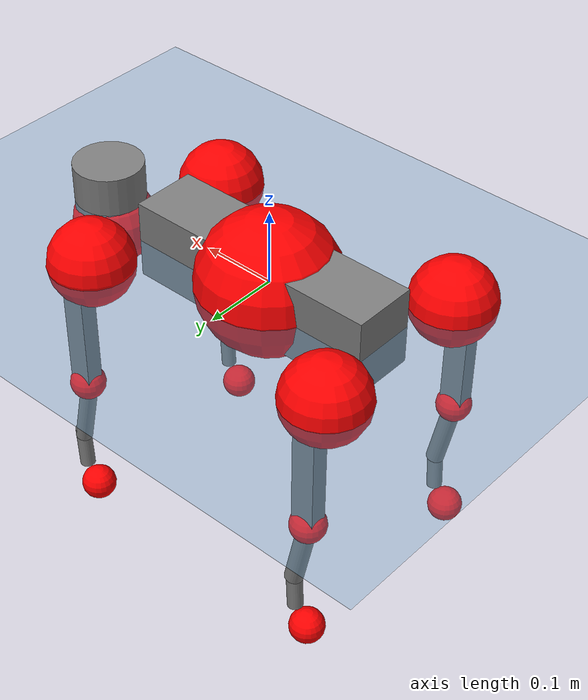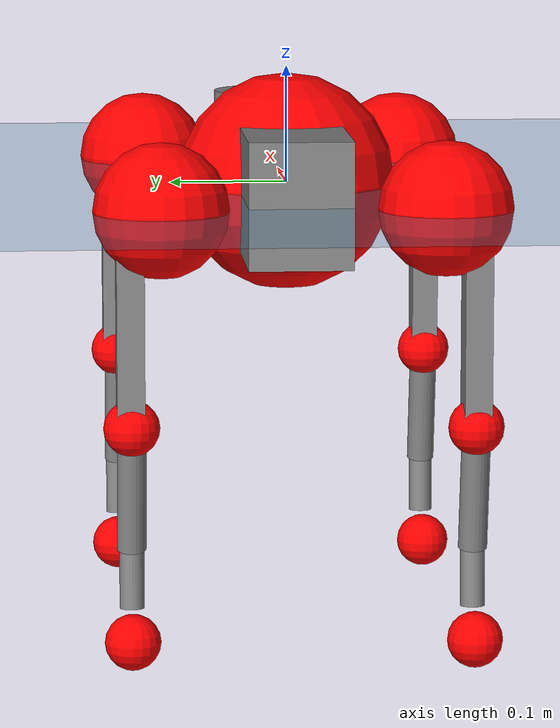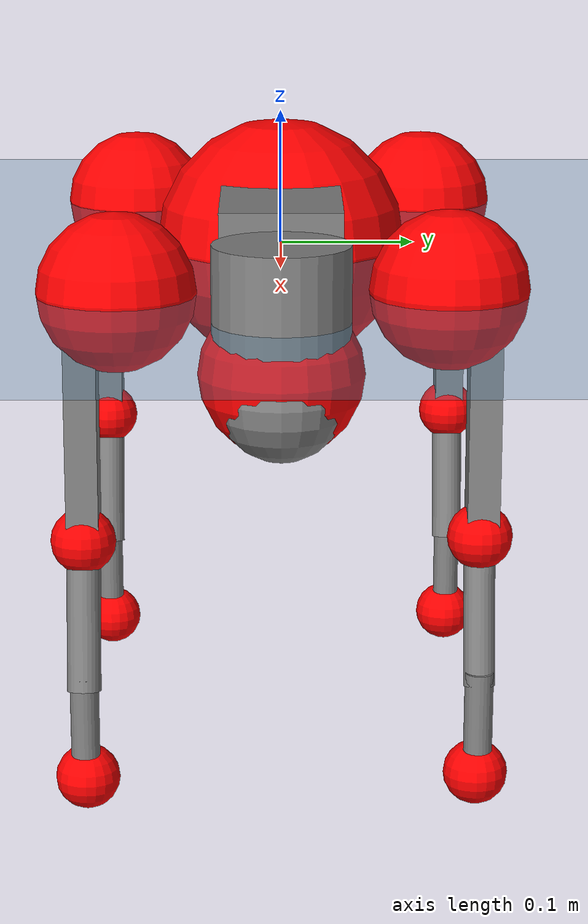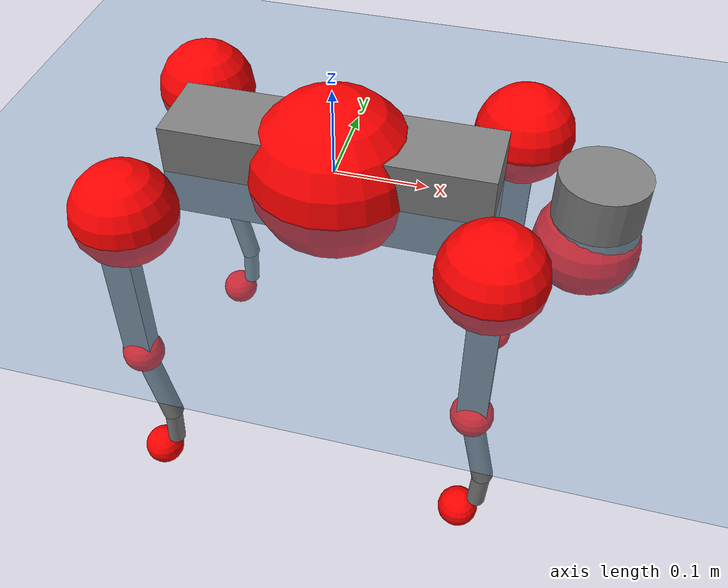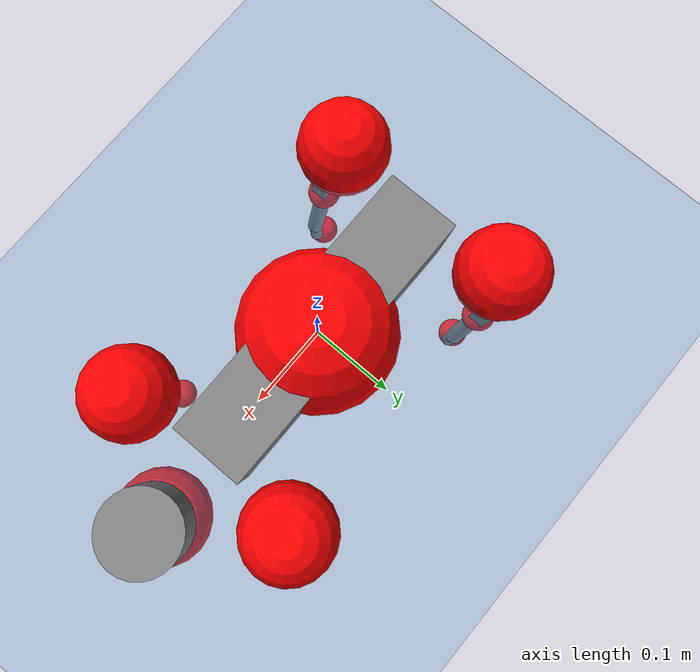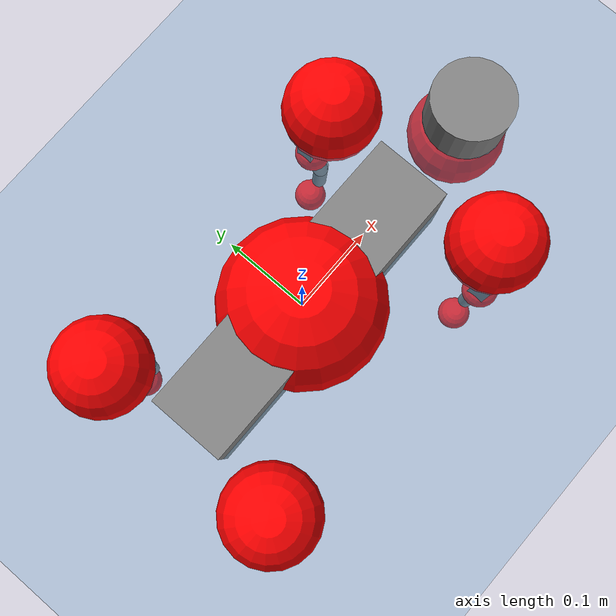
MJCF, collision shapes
<mujoco model="go2">
  <compiler angle="radian" assetdir="assets" balanceinertia="true" inertiafromgeom="false"/>

  <option timestep="0.005" density="1.2" viscosity="2e-05"/>

  <size nkey="1"/>

  <visual>
    <quality shadowsize="8192"/>
    <map shadowclip="0.5"/>
  </visual>

  <default>
    <default class="/">
      <geom contype="0" conaffinity="0" group="1" solref="-1000 -80"/>
      <site size="0.01 0.005 0.005" group="5"/>
      <general forcelimited="true" biastype="affine" gainprm="20" biasprm="0 -20 -0.5"/>
      <default class="go2">
        <joint armature="0.01" damping="0.01" frictionloss="0.2"/>
        <geom condim="1" margin="0.001"/>
        <default class="visual">
          <geom type="mesh" group="2"/>
        </default>
        <default class="collision">
          <geom group="3"/>
          <default class="foot">
            <geom size="0.022 0 0" condim="6" priority="1" friction="0.8 0.02 0.01" solimp="0.015 1 0.022"/>
          </default>
        </default>
        <default class="reward_collision_sphere">
          <geom group="5" rgba="1 0 0 1"/>
        </default>
      </default>
    </default>
  </default>

  <asset>
    <texture type="skybox" colorspace="auto" name="//unnamed_texture_0" builtin="gradient" rgb1="0.95 0.95 0.95" rgb2="0.95 0.95 0.95" width="100" height="600"/>
    <texture type="2d" colorspace="auto" name="texplane" builtin="checker" rgb1="0.345 0.575 0.748" rgb2="0.345 0.575 0.748" markrgb="1 1 1" width="512" height="512"/>
    <material name="MatPlane" class="/" texture="texplane" texuniform="true" texrepeat="2 2" specular="0.9"/>
    <material name="metal" class="/" rgba="0.9 0.95 0.95 1"/>
    <material name="black" class="/" rgba="0 0 0 1"/>
    <material name="white" class="/"/>
    <material name="gray" class="/" rgba="0.671705 0.692426 0.77427 1"/>
    <mesh name="base_0" class="/" file="base_0.obj"/>
    <mesh name="base_1" class="/" file="base_1.obj"/>
    <mesh name="base_2" class="/" file="base_2.obj"/>
    <mesh name="base_3" class="/" file="base_3.obj"/>
    <mesh name="base_4" class="/" file="base_4.obj"/>
    <mesh name="hip_0" class="/" file="hip_0.obj"/>
    <mesh name="hip_1" class="/" file="hip_1.obj"/>
    <mesh name="thigh_0" class="/" file="thigh_0.obj"/>
    <mesh name="thigh_1" class="/" file="thigh_1.obj"/>
    <mesh name="thigh_mirror_0" class="/" file="thigh_mirror_0.obj"/>
    <mesh name="thigh_mirror_1" class="/" file="thigh_mirror_1.obj"/>
    <mesh name="calf_0" class="/" file="calf_0.obj"/>
    <mesh name="calf_1" class="/" file="calf_1.obj"/>
    <mesh name="calf_mirror_0" class="/" file="calf_mirror_0.obj"/>
    <mesh name="calf_mirror_1" class="/" file="calf_mirror_1.obj"/>
    <mesh name="foot" class="/" file="foot.obj"/>
  </asset>

  <worldbody>
    <geom name="floor" class="/" size="100 100 0.125" type="plane" group="0" material="MatPlane"/>
    <light name="toplight_shadow" class="/" pos="0 0 5" dir="0.0990148 0.0990148 -0.990148" type="directional" ambient="0.04 0.04 0.04" diffuse="0.55 0.55 0.55" specular="0.12 0.12 0.12"/>
    <light name="toplight_fill" class="/" pos="0 0 5" dir="0.0990148 0.0990148 -0.990148" type="directional" castshadow="false" ambient="0.04 0.04 0.04" diffuse="0.3 0.3 0.3" specular="0.08 0.08 0.08"/>
    <body name="trunk" childclass="go2" pos="7.33938e-05 4.87483e-05 0.000836082" quat="1 6.99953e-07 -1.57257e-06 -1.5416e-06">
      <inertial pos="0.0198767 8.00528e-05 -0.00518749" quat="-0.000544022 0.713437 -0.00173495 0.700717" mass="5.70446" diaginertia="0.089104 0.0957107 0.0105048"/>
      <joint name="//unnamed_joint_0" type="free" armature="0" damping="0" frictionloss="0"/>
      <geom name="//unnamed_geom_1" class="visual" material="black" mesh="base_0"/>
      <geom name="//unnamed_geom_2" class="visual" material="black" mesh="base_1"/>
      <geom name="//unnamed_geom_3" class="visual" material="black" mesh="base_2"/>
      <geom name="//unnamed_geom_4" class="visual" material="white" mesh="base_3"/>
      <geom name="//unnamed_geom_5" class="visual" material="gray" mesh="base_4"/>
      <geom name="trunk_1" class="collision" size="0.175572 0.0436364 0.0532037" type="box"/>
      <geom name="trunk_2" class="collision" size="0.0466699 0.0420029" pos="0.274471 0 0.00842898" type="cylinder"/>
      <geom name="trunk_3" class="collision" size="0.0438697" pos="0.282175 0 -0.0505739"/>
      <geom name="//unnamed_geom_9" class="reward_collision_sphere" size="0.0933398"/>
      <geom name="//unnamed_geom_10" class="reward_collision_sphere" size="0.0560039" pos="0.269656 0 -0.0379304"/>
      <site name="imu" pos="-0.024308 0.00400492 0.0352189" size="0.00933398"/>
      <camera name="track" pos="0 -1.98848 0" quat="0.707107 0.707107 0 0" mode="trackcom"/>
      <camera name="ego_camera" pos="0.300474 0 0.0379304" quat="-0.5 -0.5 0.5 0.5"/>
      <body name="FL_hip" pos="0.185744 0.0470774 0.00163718" quat="1 -2.93384e-05 6.51693e-06 -0.00022254">
        <inertial pos="-0.00480136 0.00221912 0.000607801" quat="0.497723 0.499349 0.504963 0.497931" mass="0.546065" diaginertia="0.000729045 0.000582098 0.000201228"/>
        <joint name="FL_hip_joint" pos="0 0 0" axis="0.999993 -0.00371002 2.07746e-05" stiffness="0.000891836" range="-1.04287 1.04825" armature="0.00894164" damping="0.00340205" frictionloss="0.19091"/>
        <geom name="//unnamed_geom_11" class="visual" material="metal" mesh="hip_0"/>
        <geom name="//unnamed_geom_12" class="visual" material="gray" mesh="hip_1"/>
        <geom name="//unnamed_geom_13" class="collision" size="0.0429363 0.018668" pos="0 0.0795393 0" quat="0.707107 0.707107 0 0" type="cylinder"/>
        <geom name="//unnamed_geom_14" class="reward_collision_sphere" size="0.0560039" pos="0 0.0695969 0"/>
        <body name="FL_thigh" pos="-0.00021268 0.0952931 0.00154715" quat="1 5.19767e-05 4.78753e-05 0.00011306">
          <inertial pos="-0.00384721 -0.021943 -0.0267375" quat="0.829316 0.0853579 -0.0204533 0.551843" mass="0.943842" diaginertia="0.0049491 0.00563836 0.000371832"/>
          <joint name="FL_thigh_joint" pos="0 0 0" axis="-0.000812605 0.999998 -0.00162284" stiffness="0.00442549" range="-1.54934 3.48184" armature="0.00954952" damping="0.00616301" frictionloss="0.184726"/>
          <geom name="//unnamed_geom_15" class="visual" material="metal" mesh="thigh_0"/>
          <geom name="//unnamed_geom_16" class="visual" material="gray" mesh="thigh_1"/>
          <geom name="//unnamed_geom_17" class="collision" size="0.0994069 0.0114341 0.0158678" pos="0 0 -0.0897686" quat="0.707107 0 0.707107 0" type="box"/>
          <body name="FL_calf" pos="0.000296979 -0.00146677 -0.180086" quat="1 -1.21374e-05 3.37679e-05 -1.33097e-05">
            <inertial pos="0.00646689 -0.000542018 -0.11845" quat="0.71062 0.00133524 -0.00477964 0.703558" mass="0.198228" diaginertia="0.00123521 0.00142561 2.27368e-05"/>
            <joint name="FL_calf_joint" pos="0 0 0" axis="-0.00219148 0.999984 0.00526221" stiffness="0.000658642" range="-2.72525 -0.844156" armature="0.00938903" damping="0" frictionloss="0.194557"/>
            <geom name="//unnamed_geom_18" class="visual" material="gray" mesh="calf_0"/>
            <geom name="//unnamed_geom_19" class="visual" material="black" mesh="calf_1"/>
            <geom name="FL_calf0" class="collision" size="0.0112008 0.0560039" pos="0.00770445 0 -0.0505739" quat="0.994493 0 -0.104807 0" type="cylinder"/>
            <geom name="//unnamed_geom_21" class="collision" size="0.0102674 0.0303354" pos="0.0192611 0 -0.124749" quat="0.999688 0 0.0249974 0" type="cylinder"/>
            <geom name="//unnamed_geom_22" class="visual" pos="0 0 -0.179537" quat="1 0 0 0" material="black" mesh="foot"/>
            <geom name="FL_foot" class="foot" size="0.0173137" pos="-0.00192611 0 -0.179537"/>
            <geom name="//unnamed_geom_24" class="reward_collision_sphere" size="0.023335"/>
            <geom name="//unnamed_geom_25" class="reward_collision_sphere" size="0.023335" pos="-0.00192611 0 -0.179537"/>
            <site name="FL_foot" class="foot" pos="-0.00192611 0 -0.179537" size="0.00933398"/>
          </body>
        </body>
      </body>
      <body name="FR_hip" pos="0.186331 -0.0447292 0.000199934" quat="1 0.000246141 9.18035e-05 -0.000280031">
        <inertial pos="-0.00513048 -0.00210034 -0.000800765" quat="0.498388 0.505419 0.49928 0.496871" mass="0.553913" diaginertia="0.000736021 0.000584391 0.000204329"/>
        <joint name="FR_hip_joint" pos="0 0 0" axis="1 0.000124904 3.88927e-05" range="-1.06227 1.04626" armature="0.00925475" damping="0.0136427" frictionloss="0.19519"/>
        <geom name="//unnamed_geom_26" class="visual" pos="0 1.31844e-09 5.65506e-08" quat="4.63268e-05 1 0 0" material="metal" mesh="hip_0"/>
        <geom name="//unnamed_geom_27" class="visual" pos="0 2.13735e-09 -1.39871e-07" quat="4.63268e-05 1 0 0" material="gray" mesh="hip_1"/>
        <geom name="//unnamed_geom_28" class="collision" size="0.0429363 0.018668" pos="0 -0.0795393 0" quat="0.707107 0.707107 0 0" type="cylinder"/>
        <geom name="//unnamed_geom_29" class="reward_collision_sphere" size="0.0560039" pos="0 -0.0695969 0"/>
        <body name="FR_thigh" pos="0.00100136 -0.0952339 0.000333071" quat="1 -2.73867e-05 5.06789e-06 2.09607e-06">
          <inertial pos="-0.00381413 0.0221205 -0.0274805" quat="0.55154 -0.0205978 0.0849982 0.829551" mass="0.95308" diaginertia="0.00496764 0.00575487 0.000379428"/>
          <joint name="FR_thigh_joint" pos="0 0 0" axis="0.00334534 -0.99999 0.00311991" range="-3.4753 1.56683" armature="0.00941818" damping="0.0137634" frictionloss="0.182233"/>
          <geom name="//unnamed_geom_30" class="visual" material="metal" mesh="thigh_mirror_0"/>
          <geom name="//unnamed_geom_31" class="visual" material="gray" mesh="thigh_mirror_1"/>
          <geom name="//unnamed_geom_32" class="collision" size="0.0994069 0.0114341 0.0158678" pos="0 0 -0.0897686" quat="0.707107 0 0.707107 0" type="box"/>
          <body name="FR_calf" pos="-0.000101462 -0.000330104 -0.180143" quat="1 -9.49095e-05 6.94202e-05 -0.000211893">
            <inertial pos="0.00607504 0.000160717 -0.118959" quat="0.704436 -0.00439364 0.000463047 0.709754" mass="0.193634" diaginertia="0.00121882 0.00141786 2.25387e-05"/>
            <joint name="FR_calf_joint" pos="0 0 0" axis="0.00325973 -0.999972 -0.00666252" range="0.842915 2.73048" armature="0.00943324" damping="0.00700481" frictionloss="0.179183"/>
            <geom name="//unnamed_geom_33" class="visual" material="gray" mesh="calf_mirror_0"/>
            <geom name="//unnamed_geom_34" class="visual" material="black" mesh="calf_mirror_1"/>
            <geom name="FR_calf0" class="collision" size="0.0121342 0.0560039" pos="0.00963056 0 -0.0505739" quat="0.995004 0 -0.0998334 0" type="cylinder"/>
            <geom name="//unnamed_geom_36" class="collision" size="0.0102674 0.0303354" pos="0.0192611 0 -0.124749" quat="0.999688 0 0.0249974 0" type="cylinder"/>
            <geom name="//unnamed_geom_37" class="visual" pos="0 0 -0.179537" quat="1 0 0 0" material="black" mesh="foot"/>
            <geom name="FR_foot" class="foot" size="0.0213451" pos="-0.00192611 0 -0.179537"/>
            <geom name="//unnamed_geom_39" class="reward_collision_sphere" size="0.023335"/>
            <geom name="//unnamed_geom_40" class="reward_collision_sphere" size="0.023335" pos="-0.00192611 0 -0.179537"/>
            <site name="FR_foot" class="foot" pos="-0.00192611 0 -0.179537" size="0.00933398"/>
          </body>
        </body>
      </body>
      <body name="RL_hip" pos="-0.18694 0.0460625 -0.00038514" quat="1 -4.45046e-06 -1.46021e-05 6.21862e-06">
        <inertial pos="0.00579276 0.0027306 0.000504445" quat="0.50511 0.501769 0.497453 0.495613" mass="0.545144" diaginertia="0.000733349 0.000572611 0.000205376"/>
        <joint name="RL_hip_joint" pos="0 0 0" axis="-0.999891 0.0133639 -0.00627528" stiffness="0.00161505" range="-1.03883 1.05859" armature="0.00938549" damping="0.0166664" frictionloss="0.179967"/>
        <geom name="//unnamed_geom_41" class="visual" pos="-1.04677e-09 0 -2.05191e-07" quat="4.63268e-05 0 1 0" material="metal" mesh="hip_0"/>
        <geom name="//unnamed_geom_42" class="visual" pos="-1.69694e-09 0 -1.81976e-07" quat="4.63268e-05 0 1 0" material="gray" mesh="hip_1"/>
        <geom name="//unnamed_geom_43" class="collision" size="0.0429363 0.018668" pos="0 0.0795393 0" quat="0.707107 0.707107 0 0" type="cylinder"/>
        <geom name="//unnamed_geom_44" class="reward_collision_sphere" size="0.0560039" pos="0 0.0695969 0"/>
        <body name="RL_thigh" pos="0.000300245 0.095318 -0.000435405" quat="1 0.000367248 -2.72933e-05 -0.000150914">
          <inertial pos="-0.00357016 -0.0210995 -0.0276443" quat="0.82972 0.0841537 -0.0205709 0.551417" mass="0.944974" diaginertia="0.00491412 0.00574366 0.000371653"/>
          <joint name="RL_thigh_joint" pos="0 0 0" axis="7.08205e-05 0.999999 0.00151148" range="-0.521451 4.53928" armature="0.00939104" damping="0.00970892" frictionloss="0.186965"/>
          <geom name="//unnamed_geom_45" class="visual" material="metal" mesh="thigh_0"/>
          <geom name="//unnamed_geom_46" class="visual" material="gray" mesh="thigh_1"/>
          <geom name="//unnamed_geom_47" class="collision" size="0.0994069 0.0114341 0.0158678" pos="0 0 -0.0897686" quat="0.707107 0 0.707107 0" type="box"/>
          <body name="RL_calf" pos="-0.000166627 -0.000822195 -0.17932" quat="1 -0.000113927 1.15389e-05 -0.000127151">
            <inertial pos="0.00533839 -0.000737235 -0.11827" quat="0.710818 0.00160498 -0.0045009 0.70336" mass="0.199189" diaginertia="0.00124649 0.0014403 2.31843e-05"/>
            <joint name="RL_calf_joint" pos="0 0 0" axis="0.00689115 0.99997 0.00365342" range="-2.72337 -0.858493" armature="0.00942518" damping="0" frictionloss="0.181052"/>
            <geom name="//unnamed_geom_48" class="visual" material="gray" mesh="calf_0"/>
            <geom name="//unnamed_geom_49" class="visual" material="black" mesh="calf_1"/>
            <geom name="RL_calf0" class="collision" size="0.0121342 0.0560039" pos="0.00963056 0 -0.0505739" quat="0.995004 0 -0.0998334 0" type="cylinder"/>
            <geom name="//unnamed_geom_51" class="collision" size="0.0102674 0.0303354" pos="0.0192611 0 -0.124749" quat="0.999688 0 0.0249974 0" type="cylinder"/>
            <geom name="//unnamed_geom_52" class="visual" pos="0 0 -0.179537" quat="1 0 0 0" material="black" mesh="foot"/>
            <geom name="RL_foot" class="foot" size="0.0176489" pos="-0.00192611 0 -0.179537"/>
            <geom name="//unnamed_geom_54" class="reward_collision_sphere" size="0.023335"/>
            <geom name="//unnamed_geom_55" class="reward_collision_sphere" size="0.023335" pos="-0.00192611 0 -0.179537"/>
            <site name="RL_foot" class="foot" pos="-0.00192611 0 -0.179537" size="0.00933398"/>
          </body>
        </body>
      </body>
      <body name="RR_hip" pos="-0.186494 -0.0480843 -0.000679944" quat="1 -1.66351e-05 -8.30966e-06 -1.5888e-05">
        <inertial pos="0.00564174 -0.00252268 0.000260675" quat="0.496168 0.496807 0.500303 0.506653" mass="0.554644" diaginertia="0.000732273 0.000590274 0.000206426"/>
        <joint name="RR_hip_joint" pos="0 0 0" axis="-0.999996 0.000662849 -0.00292263" range="-1.03909 1.05734" armature="0.00943915" damping="0.00730428" frictionloss="0.178274"/>
        <geom name="//unnamed_geom_56" class="visual" pos="1.04785e-09 1.31844e-09 -2.61742e-07" quat="2.14617e-09 4.63268e-05 4.63268e-05 -1" material="metal" mesh="hip_0"/>
        <geom name="//unnamed_geom_57" class="visual" pos="1.69427e-09 2.13735e-09 -4.21043e-08" quat="2.14617e-09 4.63268e-05 4.63268e-05 -1" material="gray" mesh="hip_1"/>
        <geom name="//unnamed_geom_58" class="collision" size="0.0429363 0.018668" pos="0 -0.0795393 0" quat="0.707107 0.707107 0 0" type="cylinder"/>
        <geom name="//unnamed_geom_59" class="reward_collision_sphere" size="0.0560039" pos="0 -0.0695969 0"/>
        <body name="RR_thigh" pos="0.000264707 -0.095751 -0.00230189" quat="1 4.7841e-05 -4.07472e-05 6.4374e-05">
          <inertial pos="-0.00340779 0.0231269 -0.0284815" quat="0.553032 -0.0179096 0.086283 0.828486" mass="0.927468" diaginertia="0.00489263 0.00560345 0.000370848"/>
          <joint name="RR_thigh_joint" pos="0 0 0" axis="-0.00519184 -0.999951 0.00842388" range="-4.54396 0.521815" armature="0.0097419" damping="0.0166499" frictionloss="0.188986"/>
          <geom name="//unnamed_geom_60" class="visual" material="metal" mesh="thigh_mirror_0"/>
          <geom name="//unnamed_geom_61" class="visual" material="gray" mesh="thigh_mirror_1"/>
          <geom name="//unnamed_geom_62" class="collision" size="0.0994069 0.0114341 0.0158678" pos="0 0 -0.0897686" quat="0.707107 0 0.707107 0" type="box"/>
          <body name="RR_calf" pos="0.00113054 -0.00019095 -0.180231" quat="1 0.000203193 5.69519e-05 -0.000179285">
            <inertial pos="0.00525577 0.000576689 -0.11948" quat="0.703679 -0.00413138 0.00359787 0.710496" mass="0.197974" diaginertia="0.00125164 0.00142902 2.30568e-05"/>
            <joint name="RR_calf_joint" pos="0 0 0" axis="-0.00452293 -0.999987 -0.00232539" range="0.826847 2.72339" armature="0.00942901" damping="0.00922286" frictionloss="0.188388"/>
            <geom name="//unnamed_geom_63" class="visual" material="gray" mesh="calf_mirror_0"/>
            <geom name="//unnamed_geom_64" class="visual" material="black" mesh="calf_mirror_1"/>
            <geom name="RR_calf0" class="collision" size="0.0121342 0.0560039" pos="0.00963056 0 -0.0505739" quat="0.995004 0 -0.0998334 0" type="cylinder"/>
            <geom name="//unnamed_geom_66" class="collision" size="0.0102674 0.0303354" pos="0.0192611 0 -0.124749" quat="0.999688 0 0.0249974 0" type="cylinder"/>
            <geom name="//unnamed_geom_67" class="visual" pos="0 0 -0.179537" quat="1 0 0 0" material="black" mesh="foot"/>
            <geom name="RR_foot" class="foot" size="0.0211201" pos="-0.00192611 0 -0.179537"/>
            <geom name="//unnamed_geom_69" class="reward_collision_sphere" size="0.023335"/>
            <geom name="//unnamed_geom_70" class="reward_collision_sphere" size="0.023335" pos="-0.00192611 0 -0.179537"/>
            <site name="RR_foot" class="foot" pos="-0.00192611 0 -0.179537" size="0.00933398"/>
          </body>
        </body>
      </body>
    </body>
  </worldbody>

  <contact>
    <pair class="/" geom1="floor" geom2="FL_foot" name="//unnamed_contact_0"/>
    <pair class="/" geom1="floor" geom2="FR_foot" name="//unnamed_contact_1"/>
    <pair class="/" geom1="floor" geom2="RL_foot" name="//unnamed_contact_2"/>
    <pair class="/" geom1="floor" geom2="RR_foot" name="//unnamed_contact_3"/>
  </contact>

  <actuator>
    <general name="FL_hip" class="/" joint="FL_hip_joint" forcerange="-22.7557 22.7557" gainprm="18.886" biasprm="0 -18.886 -0.465002"/>
    <general name="FL_thigh" class="/" joint="FL_thigh_joint" forcerange="-21.5191 21.5191" gainprm="18.886" biasprm="0 -18.886 -0.465002"/>
    <general name="FL_calf" class="/" joint="FL_calf_joint" forcerange="-42.8343 42.8343" gainprm="18.886" biasprm="0 -18.886 -0.465002"/>
    <general name="FR_hip" class="/" joint="FR_hip_joint" forcerange="-21.7891 21.7891" gainprm="18.886" biasprm="0 -18.886 -0.465002"/>
    <general name="FR_thigh" class="/" joint="FR_thigh_joint" forcerange="-22.0327 22.0327" gainprm="18.886" biasprm="0 -18.886 -0.465002"/>
    <general name="FR_calf" class="/" joint="FR_calf_joint" forcerange="-42.8282 42.8282" gainprm="18.886" biasprm="0 -18.886 -0.465002"/>
    <general name="RL_hip" class="/" joint="RL_hip_joint" forcerange="-21.388 21.388" gainprm="18.886" biasprm="0 -18.886 -0.465002"/>
    <general name="RL_thigh" class="/" joint="RL_thigh_joint" forcerange="-22.1485 22.1485" gainprm="18.886" biasprm="0 -18.886 -0.465002"/>
    <general name="RL_calf" class="/" joint="RL_calf_joint" forcerange="-43.537 43.537" gainprm="18.886" biasprm="0 -18.886 -0.465002"/>
    <general name="RR_hip" class="/" joint="RR_hip_joint" forcerange="-21.5561 21.5561" gainprm="18.886" biasprm="0 -18.886 -0.465002"/>
    <general name="RR_thigh" class="/" joint="RR_thigh_joint" forcerange="-21.8188 21.8188" gainprm="18.886" biasprm="0 -18.886 -0.465002"/>
    <general name="RR_calf" class="/" joint="RR_calf_joint" forcerange="-41.9356 41.9356" gainprm="18.886" biasprm="0 -18.886 -0.465002"/>
  </actuator>

  <sensor>
    <gyro site="imu" name="imu_angular_velocity"/>
    <velocimeter site="imu" name="imu_linear_velocity"/>
    <framelinvel objtype="site" objname="FL_foot" name="FL_foot_global_linear_velocity"/>
    <framelinvel objtype="site" objname="FR_foot" name="FR_foot_global_linear_velocity"/>
    <framelinvel objtype="site" objname="RL_foot" name="RL_foot_global_linear_velocity"/>
    <framelinvel objtype="site" objname="RR_foot" name="RR_foot_global_linear_velocity"/>
  </sensor>

  <keyframe>
    <key name="home" qpos="0 0 0.325 1 0 0 0 0.1 0.8 -1.5 -0.1 -0.8 1.5 -0.1 0.8 -1.5 0.1 -0.8 1.5"/>
  </keyframe>
</mujoco>
